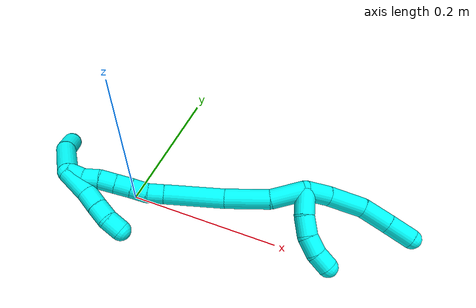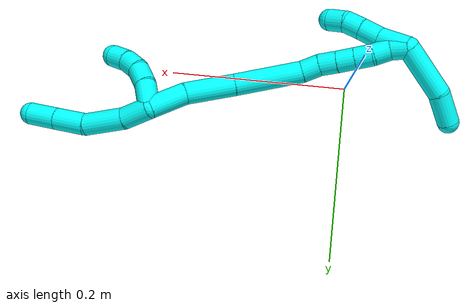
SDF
<sdf version="1.7">
 <world name="default">
  <model name="3">
   <static>0</static>
   <link name="3">
    <collision name="collision-cylinder-e_1_2_8">
     <pose>-0.008723 -0.004564 0.012999 0.337675 -0.564436 -0.098772</pose>
     <geometry><cylinder><radius>0.0125</radius><length>0.032611</length></cylinder></geometry>
     <surface>
      <friction><ode><mu>1.16</mu><mu2>1.16</mu2><slip1>0</slip1><slip2>0</slip2></ode></friction>
      <contact><ode><kp>1e+06</kp><kd>1</kd><max_vel>0</max_vel><min_depth>0.001</min_depth></ode></contact>
     </surface>
    </collision>
    <visual name="visual-cylinder-e_1_2_8">
     <pose>-0.008723 -0.004564 0.012999 0.337675 -0.564436 -0.098772</pose>
     <geometry><cylinder><radius>0.0125</radius><length>0.032611</length></cylinder></geometry>
     <material><ambient>0.003922 1 0.996078 1</ambient></material>
    </visual>
    <collision name="collision-cylinder-e_2_8_9">
     <pose>-0.025456 -0.015457 0.047429 0.287154 -0.344193 -0.050247</pose>
     <geometry><cylinder><radius>0.0125</radius><length>0.04748</length></cylinder></geometry>
     <surface>
      <friction><ode><mu>1.16</mu><mu2>1.16</mu2><slip1>0</slip1><slip2>0</slip2></ode></friction>
      <contact><ode><kp>1e+06</kp><kd>1</kd><max_vel>0</max_vel><min_depth>0.001</min_depth></ode></contact>
     </surface>
    </collision>
    <visual name="visual-cylinder-e_2_8_9">
     <pose>-0.025456 -0.015457 0.047429 0.287154 -0.344193 -0.050247</pose>
     <geometry><cylinder><radius>0.0125</radius><length>0.04748</length></cylinder></geometry>
     <material><ambient>0.003922 1 0.996078 1</ambient></material>
    </visual>
    <collision name="collision-cylinder-e_3_9_10">
     <pose>-0.034831 -0.023556 0.086964 0.09742 -0.074898 -0.003653</pose>
     <geometry><cylinder><radius>0.0125</radius><length>0.036479</length></cylinder></geometry>
     <surface>
      <friction><ode><mu>1.16</mu><mu2>1.16</mu2><slip1>0</slip1><slip2>0</slip2></ode></friction>
      <contact><ode><kp>1e+06</kp><kd>1</kd><max_vel>0</max_vel><min_depth>0.001</min_depth></ode></contact>
     </surface>
    </collision>
    <visual name="visual-cylinder-e_3_9_10">
     <pose>-0.034831 -0.023556 0.086964 0.09742 -0.074898 -0.003653</pose>
     <geometry><cylinder><radius>0.0125</radius><length>0.036479</length></cylinder></geometry>
     <material><ambient>0.003922 1 0.996078 1</ambient></material>
    </visual>
    <collision name="collision-cylinder-e_4_10_6">
     <pose>-0.037472 -0.026757 0.121671 0.086025 -0.076374 -0.003289</pose>
     <geometry><cylinder><radius>0.0125</radius><length>0.03343</length></cylinder></geometry>
     <surface>
      <friction><ode><mu>1.16</mu><mu2>1.16</mu2><slip1>0</slip1><slip2>0</slip2></ode></friction>
      <contact><ode><kp>1e+06</kp><kd>1</kd><max_vel>0</max_vel><min_depth>0.001</min_depth></ode></contact>
     </surface>
    </collision>
    <visual name="visual-cylinder-e_4_10_6">
     <pose>-0.037472 -0.026757 0.121671 0.086025 -0.076374 -0.003289</pose>
     <geometry><cylinder><radius>0.0125</radius><length>0.03343</length></cylinder></geometry>
     <material><ambient>0.003922 1 0.996078 1</ambient></material>
    </visual>
    <collision name="collision-cylinder-e_1_2_11">
     <pose>0.006397 0.011177 0.009071 -0.889035 0.418209 -0.201468</pose>
     <geometry><cylinder><radius>0.0125</radius><length>0.031504</length></cylinder></geometry>
     <surface>
      <friction><ode><mu>1.16</mu><mu2>1.16</mu2><slip1>0</slip1><slip2>0</slip2></ode></friction>
      <contact><ode><kp>1e+06</kp><kd>1</kd><max_vel>0</max_vel><min_depth>0.001</min_depth></ode></contact>
     </surface>
    </collision>
    <visual name="visual-cylinder-e_1_2_11">
     <pose>0.006397 0.011177 0.009071 -0.889035 0.418209 -0.201468</pose>
     <geometry><cylinder><radius>0.0125</radius><length>0.031504</length></cylinder></geometry>
     <material><ambient>0.003922 1 0.996078 1</ambient></material>
    </visual>
    <collision name="collision-cylinder-e_2_11_12">
     <pose>0.016141 0.030002 0.027332 -0.694104 0.272889 -0.099237</pose>
     <geometry><cylinder><radius>0.0125</radius><length>0.024832</length></cylinder></geometry>
     <surface>
      <friction><ode><mu>1.16</mu><mu2>1.16</mu2><slip1>0</slip1><slip2>0</slip2></ode></friction>
      <contact><ode><kp>1e+06</kp><kd>1</kd><max_vel>0</max_vel><min_depth>0.001</min_depth></ode></contact>
     </surface>
    </collision>
    <visual name="visual-cylinder-e_2_11_12">
     <pose>0.016141 0.030002 0.027332 -0.694104 0.272889 -0.099237</pose>
     <geometry><cylinder><radius>0.0125</radius><length>0.024832</length></cylinder></geometry>
     <material><ambient>0.003922 1 0.996078 1</ambient></material>
    </visual>
    <collision name="collision-cylinder-e_3_12_13">
     <pose>0.019996 0.042324 0.04664 -0.432697 0.045619 -0.010028</pose>
     <geometry><cylinder><radius>0.0125</radius><length>0.022313</length></cylinder></geometry>
     <surface>
      <friction><ode><mu>1.16</mu><mu2>1.16</mu2><slip1>0</slip1><slip2>0</slip2></ode></friction>
      <contact><ode><kp>1e+06</kp><kd>1</kd><max_vel>0</max_vel><min_depth>0.001</min_depth></ode></contact>
     </surface>
    </collision>
    <visual name="visual-cylinder-e_3_12_13">
     <pose>0.019996 0.042324 0.04664 -0.432697 0.045619 -0.010028</pose>
     <geometry><cylinder><radius>0.0125</radius><length>0.022313</length></cylinder></geometry>
     <material><ambient>0.003922 1 0.996078 1</ambient></material>
    </visual>
    <collision name="collision-cylinder-e_4_13_5">
     <pose>0.019569 0.049109 0.06718 -0.199962 -0.087742 0.008808</pose>
     <geometry><cylinder><radius>0.0125</radius><length>0.021351</length></cylinder></geometry>
     <surface>
      <friction><ode><mu>1.16</mu><mu2>1.16</mu2><slip1>0</slip1><slip2>0</slip2></ode></friction>
      <contact><ode><kp>1e+06</kp><kd>1</kd><max_vel>0</max_vel><min_depth>0.001</min_depth></ode></contact>
     </surface>
    </collision>
    <visual name="visual-cylinder-e_4_13_5">
     <pose>0.019569 0.049109 0.06718 -0.199962 -0.087742 0.008808</pose>
     <geometry><cylinder><radius>0.0125</radius><length>0.021351</length></cylinder></geometry>
     <material><ambient>0.003922 1 0.996078 1</ambient></material>
    </visual>
    <collision name="collision-cylinder-e_1_2_14">
     <pose>0.00497 0.016978 -0.01292 -2.22128 0.228879 -0.455752</pose>
     <geometry><cylinder><radius>0.0125</radius><length>0.043813</length></cylinder></geometry>
     <surface>
      <friction><ode><mu>1.16</mu><mu2>1.16</mu2><slip1>0</slip1><slip2>0</slip2></ode></friction>
      <contact><ode><kp>1e+06</kp><kd>1</kd><max_vel>0</max_vel><min_depth>0.001</min_depth></ode></contact>
     </surface>
    </collision>
    <visual name="visual-cylinder-e_1_2_14">
     <pose>0.00497 0.016978 -0.01292 -2.22128 0.228879 -0.455752</pose>
     <geometry><cylinder><radius>0.0125</radius><length>0.043813</length></cylinder></geometry>
     <material><ambient>0.003922 1 0.996078 1</ambient></material>
    </visual>
    <collision name="collision-cylinder-e_2_14_15">
     <pose>0.014201 0.051301 -0.047977 -2.47701 0.150357 -0.429786</pose>
     <geometry><cylinder><radius>0.0125</radius><length>0.056887</length></cylinder></geometry>
     <surface>
      <friction><ode><mu>1.16</mu><mu2>1.16</mu2><slip1>0</slip1><slip2>0</slip2></ode></friction>
      <contact><ode><kp>1e+06</kp><kd>1</kd><max_vel>0</max_vel><min_depth>0.001</min_depth></ode></contact>
     </surface>
    </collision>
    <visual name="visual-cylinder-e_2_14_15">
     <pose>0.014201 0.051301 -0.047977 -2.47701 0.150357 -0.429786</pose>
     <geometry><cylinder><radius>0.0125</radius><length>0.056887</length></cylinder></geometry>
     <material><ambient>0.003922 1 0.996078 1</ambient></material>
    </visual>
    <collision name="collision-cylinder-e_3_15_16">
     <pose>0.026759 0.089637 -0.10152 -2.55238 0.216225 -0.68702</pose>
     <geometry><cylinder><radius>0.0125</radius><length>0.077352</length></cylinder></geometry>
     <surface>
      <friction><ode><mu>1.16</mu><mu2>1.16</mu2><slip1>0</slip1><slip2>0</slip2></ode></friction>
      <contact><ode><kp>1e+06</kp><kd>1</kd><max_vel>0</max_vel><min_depth>0.001</min_depth></ode></contact>
     </surface>
    </collision>
    <visual name="visual-cylinder-e_3_15_16">
     <pose>0.026759 0.089637 -0.10152 -2.55238 0.216225 -0.68702</pose>
     <geometry><cylinder><radius>0.0125</radius><length>0.077352</length></cylinder></geometry>
     <material><ambient>0.003922 1 0.996078 1</ambient></material>
    </visual>
    <collision name="collision-cylinder-e_4_16_17">
     <pose>0.039749 0.115513 -0.141099 -2.60297 0.457901 -1.40233</pose>
     <geometry><cylinder><radius>0.0125</radius><length>0.021227</length></cylinder></geometry>
     <surface>
      <friction><ode><mu>1.16</mu><mu2>1.16</mu2><slip1>0</slip1><slip2>0</slip2></ode></friction>
      <contact><ode><kp>1e+06</kp><kd>1</kd><max_vel>0</max_vel><min_depth>0.001</min_depth></ode></contact>
     </surface>
    </collision>
    <visual name="visual-cylinder-e_4_16_17">
     <pose>0.039749 0.115513 -0.141099 -2.60297 0.457901 -1.40233</pose>
     <geometry><cylinder><radius>0.0125</radius><length>0.021227</length></cylinder></geometry>
     <material><ambient>0.003922 1 0.996078 1</ambient></material>
    </visual>
    <collision name="collision-cylinder-e_5_17_18">
     <pose>0.04784 0.123243 -0.158375 -2.83846 0.342294 -1.69413</pose>
     <geometry><cylinder><radius>0.0125</radius><length>0.020253</length></cylinder></geometry>
     <surface>
      <friction><ode><mu>1.16</mu><mu2>1.16</mu2><slip1>0</slip1><slip2>0</slip2></ode></friction>
      <contact><ode><kp>1e+06</kp><kd>1</kd><max_vel>0</max_vel><min_depth>0.001</min_depth></ode></contact>
     </surface>
    </collision>
    <visual name="visual-cylinder-e_5_17_18">
     <pose>0.04784 0.123243 -0.158375 -2.83846 0.342294 -1.69413</pose>
     <geometry><cylinder><radius>0.0125</radius><length>0.020253</length></cylinder></geometry>
     <material><ambient>0.003922 1 0.996078 1</ambient></material>
    </visual>
    <collision name="collision-cylinder-e_6_18_19">
     <pose>0.054757 0.129246 -0.176449 -2.80335 0.354428 -1.61848</pose>
     <geometry><cylinder><radius>0.0125</radius><length>0.020276</length></cylinder></geometry>
     <surface>
      <friction><ode><mu>1.16</mu><mu2>1.16</mu2><slip1>0</slip1><slip2>0</slip2></ode></friction>
      <contact><ode><kp>1e+06</kp><kd>1</kd><max_vel>0</max_vel><min_depth>0.001</min_depth></ode></contact>
     </surface>
    </collision>
    <visual name="visual-cylinder-e_6_18_19">
     <pose>0.054757 0.129246 -0.176449 -2.80335 0.354428 -1.61848</pose>
     <geometry><cylinder><radius>0.0125</radius><length>0.020276</length></cylinder></geometry>
     <material><ambient>0.003922 1 0.996078 1</ambient></material>
    </visual>
    <collision name="collision-cylinder-e_7_19_20">
     <pose>0.061794 0.135507 -0.194323 -2.80594 0.357064 -1.63384</pose>
     <geometry><cylinder><radius>0.0125</radius><length>0.020132</length></cylinder></geometry>
     <surface>
      <friction><ode><mu>1.16</mu><mu2>1.16</mu2><slip1>0</slip1><slip2>0</slip2></ode></friction>
      <contact><ode><kp>1e+06</kp><kd>1</kd><max_vel>0</max_vel><min_depth>0.001</min_depth></ode></contact>
     </surface>
    </collision>
    <visual name="visual-cylinder-e_7_19_20">
     <pose>0.061794 0.135507 -0.194323 -2.80594 0.357064 -1.63384</pose>
     <geometry><cylinder><radius>0.0125</radius><length>0.020132</length></cylinder></geometry>
     <material><ambient>0.003922 1 0.996078 1</ambient></material>
    </visual>
    <collision name="collision-cylinder-e_8_20_21">
     <pose>0.069028 0.1436 -0.211076 -2.57558 0.380147 -1.16895</pose>
     <geometry><cylinder><radius>0.0125</radius><length>0.020025</length></cylinder></geometry>
     <surface>
      <friction><ode><mu>1.16</mu><mu2>1.16</mu2><slip1>0</slip1><slip2>0</slip2></ode></friction>
      <contact><ode><kp>1e+06</kp><kd>1</kd><max_vel>0</max_vel><min_depth>0.001</min_depth></ode></contact>
     </surface>
    </collision>
    <visual name="visual-cylinder-e_8_20_21">
     <pose>0.069028 0.1436 -0.211076 -2.57558 0.380147 -1.16895</pose>
     <geometry><cylinder><radius>0.0125</radius><length>0.020025</length></cylinder></geometry>
     <material><ambient>0.003922 1 0.996078 1</ambient></material>
    </visual>
    <collision name="collision-cylinder-e_9_21_1">
     <pose>0.075395 0.15082 -0.228321 -2.90828 0.267963 -1.71028</pose>
     <geometry><cylinder><radius>0.0125</radius><length>0.020033</length></cylinder></geometry>
     <surface>
      <friction><ode><mu>1.16</mu><mu2>1.16</mu2><slip1>0</slip1><slip2>0</slip2></ode></friction>
      <contact><ode><kp>1e+06</kp><kd>1</kd><max_vel>0</max_vel><min_depth>0.001</min_depth></ode></contact>
     </surface>
    </collision>
    <visual name="visual-cylinder-e_9_21_1">
     <pose>0.075395 0.15082 -0.228321 -2.90828 0.267963 -1.71028</pose>
     <geometry><cylinder><radius>0.0125</radius><length>0.020033</length></cylinder></geometry>
     <material><ambient>0.003922 1 0.996078 1</ambient></material>
    </visual>
    <collision name="collision-cylinder-e_1_1_22">
     <pose>0.077914 0.154934 -0.22019 -0.106886 -0.007564 0.000405</pose>
     <geometry><cylinder><radius>0.0125</radius><length>0.03526</length></cylinder></geometry>
     <surface>
      <friction><ode><mu>1.16</mu><mu2>1.16</mu2><slip1>0</slip1><slip2>0</slip2></ode></friction>
      <contact><ode><kp>1e+06</kp><kd>1</kd><max_vel>0</max_vel><min_depth>0.001</min_depth></ode></contact>
     </surface>
    </collision>
    <visual name="visual-cylinder-e_1_1_22">
     <pose>0.077914 0.154934 -0.22019 -0.106886 -0.007564 0.000405</pose>
     <geometry><cylinder><radius>0.0125</radius><length>0.03526</length></cylinder></geometry>
     <material><ambient>0.003922 1 0.996078 1</ambient></material>
    </visual>
    <collision name="collision-cylinder-e_2_22_23">
     <pose>0.079649 0.158175 -0.191307 -0.119277 0.161925 -0.00969</pose>
     <geometry><cylinder><radius>0.0125</radius><length>0.023172</length></cylinder></geometry>
     <surface>
      <friction><ode><mu>1.16</mu><mu2>1.16</mu2><slip1>0</slip1><slip2>0</slip2></ode></friction>
      <contact><ode><kp>1e+06</kp><kd>1</kd><max_vel>0</max_vel><min_depth>0.001</min_depth></ode></contact>
     </surface>
    </collision>
    <visual name="visual-cylinder-e_2_22_23">
     <pose>0.079649 0.158175 -0.191307 -0.119277 0.161925 -0.00969</pose>
     <geometry><cylinder><radius>0.0125</radius><length>0.023172</length></cylinder></geometry>
     <material><ambient>0.003922 1 0.996078 1</ambient></material>
    </visual>
    <collision name="collision-cylinder-e_3_23_24">
     <pose>0.082753 0.160675 -0.169711 -0.11074 0.119401 -0.006626</pose>
     <geometry><cylinder><radius>0.0125</radius><length>0.020759</length></cylinder></geometry>
     <surface>
      <friction><ode><mu>1.16</mu><mu2>1.16</mu2><slip1>0</slip1><slip2>0</slip2></ode></friction>
      <contact><ode><kp>1e+06</kp><kd>1</kd><max_vel>0</max_vel><min_depth>0.001</min_depth></ode></contact>
     </surface>
    </collision>
    <visual name="visual-cylinder-e_3_23_24">
     <pose>0.082753 0.160675 -0.169711 -0.11074 0.119401 -0.006626</pose>
     <geometry><cylinder><radius>0.0125</radius><length>0.020759</length></cylinder></geometry>
     <material><ambient>0.003922 1 0.996078 1</ambient></material>
    </visual>
    <collision name="collision-cylinder-e_4_24_4">
     <pose>0.081883 0.162703 -0.149319 -0.087376 -0.203893 0.008944</pose>
     <geometry><cylinder><radius>0.0125</radius><length>0.020809</length></cylinder></geometry>
     <surface>
      <friction><ode><mu>1.16</mu><mu2>1.16</mu2><slip1>0</slip1><slip2>0</slip2></ode></friction>
      <contact><ode><kp>1e+06</kp><kd>1</kd><max_vel>0</max_vel><min_depth>0.001</min_depth></ode></contact>
     </surface>
    </collision>
    <visual name="visual-cylinder-e_4_24_4">
     <pose>0.081883 0.162703 -0.149319 -0.087376 -0.203893 0.008944</pose>
     <geometry><cylinder><radius>0.0125</radius><length>0.020809</length></cylinder></geometry>
     <material><ambient>0.003922 1 0.996078 1</ambient></material>
    </visual>
    <collision name="collision-cylinder-e_1_1_25">
     <pose>0.05498 0.154722 -0.258821 -3.06265 -0.828296 2.9624</pose>
     <geometry><cylinder><radius>0.0125</radius><length>0.062616</length></cylinder></geometry>
     <surface>
      <friction><ode><mu>1.16</mu><mu2>1.16</mu2><slip1>0</slip1><slip2>0</slip2></ode></friction>
      <contact><ode><kp>1e+06</kp><kd>1</kd><max_vel>0</max_vel><min_depth>0.001</min_depth></ode></contact>
     </surface>
    </collision>
    <visual name="visual-cylinder-e_1_1_25">
     <pose>0.05498 0.154722 -0.258821 -3.06265 -0.828296 2.9624</pose>
     <geometry><cylinder><radius>0.0125</radius><length>0.062616</length></cylinder></geometry>
     <material><ambient>0.003922 1 0.996078 1</ambient></material>
    </visual>
    <collision name="collision-cylinder-e_2_25_3">
     <pose>0.015118 0.157393 -0.288066 -3.01917 -1.11644 2.94594</pose>
     <geometry><cylinder><radius>0.0125</radius><length>0.037384</length></cylinder></geometry>
     <surface>
      <friction><ode><mu>1.16</mu><mu2>1.16</mu2><slip1>0</slip1><slip2>0</slip2></ode></friction>
      <contact><ode><kp>1e+06</kp><kd>1</kd><max_vel>0</max_vel><min_depth>0.001</min_depth></ode></contact>
     </surface>
    </collision>
    <visual name="visual-cylinder-e_2_25_3">
     <pose>0.015118 0.157393 -0.288066 -3.01917 -1.11644 2.94594</pose>
     <geometry><cylinder><radius>0.0125</radius><length>0.037384</length></cylinder></geometry>
     <material><ambient>0.003922 1 0.996078 1</ambient></material>
    </visual>
    <collision name="collision-sphere-3">
     <pose>-0.001678 0.158395 -0.296208 0 -0 0</pose>
     <geometry><sphere><radius>0.0125</radius></sphere></geometry>
     <surface>
      <friction><ode><mu>1.16</mu><mu2>1.16</mu2><slip1>0</slip1><slip2>0</slip2></ode></friction>
      <contact><ode><kp>1e+06</kp><kd>1</kd><max_vel>0</max_vel><min_depth>0.001</min_depth></ode></contact>
     </surface>
    </collision>
    <visual name="visual-sphere-3">
     <pose>-0.001678 0.158395 -0.296208 0 -0 0</pose>
     <geometry><sphere><radius>0.0125</radius></sphere></geometry>
     <material><ambient>0.003922 1 0.996078 1</ambient></material>
    </visual>
    <collision name="collision-sphere-25">
     <pose>0.031913 0.156391 -0.279923 0 -0 0</pose>
     <geometry><sphere><radius>0.0125</radius></sphere></geometry>
     <surface>
      <friction><ode><mu>1.16</mu><mu2>1.16</mu2><slip1>0</slip1><slip2>0</slip2></ode></friction>
      <contact><ode><kp>1e+06</kp><kd>1</kd><max_vel>0</max_vel><min_depth>0.001</min_depth></ode></contact>
     </surface>
    </collision>
    <visual name="visual-sphere-25">
     <pose>0.031913 0.156391 -0.279923 0 -0 0</pose>
     <geometry><sphere><radius>0.0125</radius></sphere></geometry>
     <material><ambient>0.003922 1 0.996078 1</ambient></material>
    </visual>
    <collision name="collision-sphere-4">
     <pose>0.079776 0.163592 -0.139169 0 -0 0</pose>
     <geometry><sphere><radius>0.0125</radius></sphere></geometry>
     <surface>
      <friction><ode><mu>1.16</mu><mu2>1.16</mu2><slip1>0</slip1><slip2>0</slip2></ode></friction>
      <contact><ode><kp>1e+06</kp><kd>1</kd><max_vel>0</max_vel><min_depth>0.001</min_depth></ode></contact>
     </surface>
    </collision>
    <visual name="visual-sphere-4">
     <pose>0.079776 0.163592 -0.139169 0 -0 0</pose>
     <geometry><sphere><radius>0.0125</radius></sphere></geometry>
     <material><ambient>0.003922 1 0.996078 1</ambient></material>
    </visual>
    <collision name="collision-sphere-24">
     <pose>0.083989 0.161813 -0.159469 0 -0 0</pose>
     <geometry><sphere><radius>0.0125</radius></sphere></geometry>
     <surface>
      <friction><ode><mu>1.16</mu><mu2>1.16</mu2><slip1>0</slip1><slip2>0</slip2></ode></friction>
      <contact><ode><kp>1e+06</kp><kd>1</kd><max_vel>0</max_vel><min_depth>0.001</min_depth></ode></contact>
     </surface>
    </collision>
    <visual name="visual-sphere-24">
     <pose>0.083989 0.161813 -0.159469 0 -0 0</pose>
     <geometry><sphere><radius>0.0125</radius></sphere></geometry>
     <material><ambient>0.003922 1 0.996078 1</ambient></material>
    </visual>
    <collision name="collision-sphere-23">
     <pose>0.081517 0.159536 -0.179954 0 -0 0</pose>
     <geometry><sphere><radius>0.0125</radius></sphere></geometry>
     <surface>
      <friction><ode><mu>1.16</mu><mu2>1.16</mu2><slip1>0</slip1><slip2>0</slip2></ode></friction>
      <contact><ode><kp>1e+06</kp><kd>1</kd><max_vel>0</max_vel><min_depth>0.001</min_depth></ode></contact>
     </surface>
    </collision>
    <visual name="visual-sphere-23">
     <pose>0.081517 0.159536 -0.179954 0 -0 0</pose>
     <geometry><sphere><radius>0.0125</radius></sphere></geometry>
     <material><ambient>0.003922 1 0.996078 1</ambient></material>
    </visual>
    <collision name="collision-sphere-22">
     <pose>0.077781 0.156814 -0.202661 0 -0 0</pose>
     <geometry><sphere><radius>0.0125</radius></sphere></geometry>
     <surface>
      <friction><ode><mu>1.16</mu><mu2>1.16</mu2><slip1>0</slip1><slip2>0</slip2></ode></friction>
      <contact><ode><kp>1e+06</kp><kd>1</kd><max_vel>0</max_vel><min_depth>0.001</min_depth></ode></contact>
     </surface>
    </collision>
    <visual name="visual-sphere-22">
     <pose>0.077781 0.156814 -0.202661 0 -0 0</pose>
     <geometry><sphere><radius>0.0125</radius></sphere></geometry>
     <material><ambient>0.003922 1 0.996078 1</ambient></material>
    </visual>
    <collision name="collision-sphere-1">
     <pose>0.078047 0.153053 -0.237718 0 -0 0</pose>
     <geometry><sphere><radius>0.0125</radius></sphere></geometry>
     <surface>
      <friction><ode><mu>1.16</mu><mu2>1.16</mu2><slip1>0</slip1><slip2>0</slip2></ode></friction>
      <contact><ode><kp>1e+06</kp><kd>1</kd><max_vel>0</max_vel><min_depth>0.001</min_depth></ode></contact>
     </surface>
    </collision>
    <visual name="visual-sphere-1">
     <pose>0.078047 0.153053 -0.237718 0 -0 0</pose>
     <geometry><sphere><radius>0.0125</radius></sphere></geometry>
     <material><ambient>0.003922 1 0.996078 1</ambient></material>
    </visual>
    <collision name="collision-sphere-21">
     <pose>0.072743 0.148586 -0.218923 0 -0 0</pose>
     <geometry><sphere><radius>0.0125</radius></sphere></geometry>
     <surface>
      <friction><ode><mu>1.16</mu><mu2>1.16</mu2><slip1>0</slip1><slip2>0</slip2></ode></friction>
      <contact><ode><kp>1e+06</kp><kd>1</kd><max_vel>0</max_vel><min_depth>0.001</min_depth></ode></contact>
     </surface>
    </collision>
    <visual name="visual-sphere-21">
     <pose>0.072743 0.148586 -0.218923 0 -0 0</pose>
     <geometry><sphere><radius>0.0125</radius></sphere></geometry>
     <material><ambient>0.003922 1 0.996078 1</ambient></material>
    </visual>
    <collision name="collision-sphere-11">
     <pose>0.012794 0.022353 0.018141 0 -0 0</pose>
     <geometry><sphere><radius>0.0125</radius></sphere></geometry>
     <surface>
      <friction><ode><mu>1.16</mu><mu2>1.16</mu2><slip1>0</slip1><slip2>0</slip2></ode></friction>
      <contact><ode><kp>1e+06</kp><kd>1</kd><max_vel>0</max_vel><min_depth>0.001</min_depth></ode></contact>
     </surface>
    </collision>
    <visual name="visual-sphere-11">
     <pose>0.012794 0.022353 0.018141 0 -0 0</pose>
     <geometry><sphere><radius>0.0125</radius></sphere></geometry>
     <material><ambient>0.003922 1 0.996078 1</ambient></material>
    </visual>
    <collision name="collision-sphere-6">
     <pose>-0.038747 -0.028189 0.138275 0 -0 0</pose>
     <geometry><sphere><radius>0.0125</radius></sphere></geometry>
     <surface>
      <friction><ode><mu>1.16</mu><mu2>1.16</mu2><slip1>0</slip1><slip2>0</slip2></ode></friction>
      <contact><ode><kp>1e+06</kp><kd>1</kd><max_vel>0</max_vel><min_depth>0.001</min_depth></ode></contact>
     </surface>
    </collision>
    <visual name="visual-sphere-6">
     <pose>-0.038747 -0.028189 0.138275 0 -0 0</pose>
     <geometry><sphere><radius>0.0125</radius></sphere></geometry>
     <material><ambient>0.003922 1 0.996078 1</ambient></material>
    </visual>
    <collision name="collision-sphere-10">
     <pose>-0.036196 -0.025325 0.105066 0 -0 0</pose>
     <geometry><sphere><radius>0.0125</radius></sphere></geometry>
     <surface>
      <friction><ode><mu>1.16</mu><mu2>1.16</mu2><slip1>0</slip1><slip2>0</slip2></ode></friction>
      <contact><ode><kp>1e+06</kp><kd>1</kd><max_vel>0</max_vel><min_depth>0.001</min_depth></ode></contact>
     </surface>
    </collision>
    <visual name="visual-sphere-10">
     <pose>-0.036196 -0.025325 0.105066 0 -0 0</pose>
     <geometry><sphere><radius>0.0125</radius></sphere></geometry>
     <material><ambient>0.003922 1 0.996078 1</ambient></material>
    </visual>
    <collision name="collision-sphere-9">
     <pose>-0.033467 -0.021787 0.068862 0 -0 0</pose>
     <geometry><sphere><radius>0.0125</radius></sphere></geometry>
     <surface>
      <friction><ode><mu>1.16</mu><mu2>1.16</mu2><slip1>0</slip1><slip2>0</slip2></ode></friction>
      <contact><ode><kp>1e+06</kp><kd>1</kd><max_vel>0</max_vel><min_depth>0.001</min_depth></ode></contact>
     </surface>
    </collision>
    <visual name="visual-sphere-9">
     <pose>-0.033467 -0.021787 0.068862 0 -0 0</pose>
     <geometry><sphere><radius>0.0125</radius></sphere></geometry>
     <material><ambient>0.003922 1 0.996078 1</ambient></material>
    </visual>
    <collision name="collision-sphere-2">
     <geometry><sphere><radius>0.0125</radius></sphere></geometry>
     <surface>
      <friction><ode><mu>1.16</mu><mu2>1.16</mu2><slip1>0</slip1><slip2>0</slip2></ode></friction>
      <contact><ode><kp>1e+06</kp><kd>1</kd><max_vel>0</max_vel><min_depth>0.001</min_depth></ode></contact>
     </surface>
    </collision>
    <visual name="visual-sphere-2">
     <geometry><sphere><radius>0.0125</radius></sphere></geometry>
     <material><ambient>0.003922 1 0.996078 1</ambient></material>
    </visual>
    <collision name="collision-sphere-19">
     <pose>0.058276 0.132401 -0.185418 0 -0 0</pose>
     <geometry><sphere><radius>0.0125</radius></sphere></geometry>
     <surface>
      <friction><ode><mu>1.16</mu><mu2>1.16</mu2><slip1>0</slip1><slip2>0</slip2></ode></friction>
      <contact><ode><kp>1e+06</kp><kd>1</kd><max_vel>0</max_vel><min_depth>0.001</min_depth></ode></contact>
     </surface>
    </collision>
    <visual name="visual-sphere-19">
     <pose>0.058276 0.132401 -0.185418 0 -0 0</pose>
     <geometry><sphere><radius>0.0125</radius></sphere></geometry>
     <material><ambient>0.003922 1 0.996078 1</ambient></material>
    </visual>
    <collision name="collision-sphere-8">
     <pose>-0.017445 -0.009128 0.025997 0 -0 0</pose>
     <geometry><sphere><radius>0.0125</radius></sphere></geometry>
     <surface>
      <friction><ode><mu>1.16</mu><mu2>1.16</mu2><slip1>0</slip1><slip2>0</slip2></ode></friction>
      <contact><ode><kp>1e+06</kp><kd>1</kd><max_vel>0</max_vel><min_depth>0.001</min_depth></ode></contact>
     </surface>
    </collision>
    <visual name="visual-sphere-8">
     <pose>-0.017445 -0.009128 0.025997 0 -0 0</pose>
     <geometry><sphere><radius>0.0125</radius></sphere></geometry>
     <material><ambient>0.003922 1 0.996078 1</ambient></material>
    </visual>
    <collision name="collision-sphere-12">
     <pose>0.019487 0.03765 0.036522 0 -0 0</pose>
     <geometry><sphere><radius>0.0125</radius></sphere></geometry>
     <surface>
      <friction><ode><mu>1.16</mu><mu2>1.16</mu2><slip1>0</slip1><slip2>0</slip2></ode></friction>
      <contact><ode><kp>1e+06</kp><kd>1</kd><max_vel>0</max_vel><min_depth>0.001</min_depth></ode></contact>
     </surface>
    </collision>
    <visual name="visual-sphere-12">
     <pose>0.019487 0.03765 0.036522 0 -0 0</pose>
     <geometry><sphere><radius>0.0125</radius></sphere></geometry>
     <material><ambient>0.003922 1 0.996078 1</ambient></material>
    </visual>
    <collision name="collision-sphere-13">
     <pose>0.020505 0.046997 0.056757 0 -0 0</pose>
     <geometry><sphere><radius>0.0125</radius></sphere></geometry>
     <surface>
      <friction><ode><mu>1.16</mu><mu2>1.16</mu2><slip1>0</slip1><slip2>0</slip2></ode></friction>
      <contact><ode><kp>1e+06</kp><kd>1</kd><max_vel>0</max_vel><min_depth>0.001</min_depth></ode></contact>
     </surface>
    </collision>
    <visual name="visual-sphere-13">
     <pose>0.020505 0.046997 0.056757 0 -0 0</pose>
     <geometry><sphere><radius>0.0125</radius></sphere></geometry>
     <material><ambient>0.003922 1 0.996078 1</ambient></material>
    </visual>
    <collision name="collision-sphere-5">
     <pose>0.018634 0.051222 0.077603 0 -0 0</pose>
     <geometry><sphere><radius>0.0125</radius></sphere></geometry>
     <surface>
      <friction><ode><mu>1.16</mu><mu2>1.16</mu2><slip1>0</slip1><slip2>0</slip2></ode></friction>
      <contact><ode><kp>1e+06</kp><kd>1</kd><max_vel>0</max_vel><min_depth>0.001</min_depth></ode></contact>
     </surface>
    </collision>
    <visual name="visual-sphere-5">
     <pose>0.018634 0.051222 0.077603 0 -0 0</pose>
     <geometry><sphere><radius>0.0125</radius></sphere></geometry>
     <material><ambient>0.003922 1 0.996078 1</ambient></material>
    </visual>
    <collision name="collision-sphere-14">
     <pose>0.009941 0.033957 -0.02584 0 -0 0</pose>
     <geometry><sphere><radius>0.0125</radius></sphere></geometry>
     <surface>
      <friction><ode><mu>1.16</mu><mu2>1.16</mu2><slip1>0</slip1><slip2>0</slip2></ode></friction>
      <contact><ode><kp>1e+06</kp><kd>1</kd><max_vel>0</max_vel><min_depth>0.001</min_depth></ode></contact>
     </surface>
    </collision>
    <visual name="visual-sphere-14">
     <pose>0.009941 0.033957 -0.02584 0 -0 0</pose>
     <geometry><sphere><radius>0.0125</radius></sphere></geometry>
     <material><ambient>0.003922 1 0.996078 1</ambient></material>
    </visual>
    <collision name="collision-sphere-15">
     <pose>0.018462 0.068645 -0.070114 0 -0 0</pose>
     <geometry><sphere><radius>0.0125</radius></sphere></geometry>
     <surface>
      <friction><ode><mu>1.16</mu><mu2>1.16</mu2><slip1>0</slip1><slip2>0</slip2></ode></friction>
      <contact><ode><kp>1e+06</kp><kd>1</kd><max_vel>0</max_vel><min_depth>0.001</min_depth></ode></contact>
     </surface>
    </collision>
    <visual name="visual-sphere-15">
     <pose>0.018462 0.068645 -0.070114 0 -0 0</pose>
     <geometry><sphere><radius>0.0125</radius></sphere></geometry>
     <material><ambient>0.003922 1 0.996078 1</ambient></material>
    </visual>
    <collision name="collision-sphere-16">
     <pose>0.035057 0.110629 -0.132926 0 -0 0</pose>
     <geometry><sphere><radius>0.0125</radius></sphere></geometry>
     <surface>
      <friction><ode><mu>1.16</mu><mu2>1.16</mu2><slip1>0</slip1><slip2>0</slip2></ode></friction>
      <contact><ode><kp>1e+06</kp><kd>1</kd><max_vel>0</max_vel><min_depth>0.001</min_depth></ode></contact>
     </surface>
    </collision>
    <visual name="visual-sphere-16">
     <pose>0.035057 0.110629 -0.132926 0 -0 0</pose>
     <geometry><sphere><radius>0.0125</radius></sphere></geometry>
     <material><ambient>0.003922 1 0.996078 1</ambient></material>
    </visual>
    <collision name="collision-sphere-17">
     <pose>0.044441 0.120396 -0.149271 0 -0 0</pose>
     <geometry><sphere><radius>0.0125</radius></sphere></geometry>
     <surface>
      <friction><ode><mu>1.16</mu><mu2>1.16</mu2><slip1>0</slip1><slip2>0</slip2></ode></friction>
      <contact><ode><kp>1e+06</kp><kd>1</kd><max_vel>0</max_vel><min_depth>0.001</min_depth></ode></contact>
     </surface>
    </collision>
    <visual name="visual-sphere-17">
     <pose>0.044441 0.120396 -0.149271 0 -0 0</pose>
     <geometry><sphere><radius>0.0125</radius></sphere></geometry>
     <material><ambient>0.003922 1 0.996078 1</ambient></material>
    </visual>
    <collision name="collision-sphere-18">
     <pose>0.051239 0.126091 -0.167479 0 -0 0</pose>
     <geometry><sphere><radius>0.0125</radius></sphere></geometry>
     <surface>
      <friction><ode><mu>1.16</mu><mu2>1.16</mu2><slip1>0</slip1><slip2>0</slip2></ode></friction>
      <contact><ode><kp>1e+06</kp><kd>1</kd><max_vel>0</max_vel><min_depth>0.001</min_depth></ode></contact>
     </surface>
    </collision>
    <visual name="visual-sphere-18">
     <pose>0.051239 0.126091 -0.167479 0 -0 0</pose>
     <geometry><sphere><radius>0.0125</radius></sphere></geometry>
     <material><ambient>0.003922 1 0.996078 1</ambient></material>
    </visual>
    <collision name="collision-sphere-20">
     <pose>0.065313 0.138614 -0.203228 0 -0 0</pose>
     <geometry><sphere><radius>0.0125</radius></sphere></geometry>
     <surface>
      <friction><ode><mu>1.16</mu><mu2>1.16</mu2><slip1>0</slip1><slip2>0</slip2></ode></friction>
      <contact><ode><kp>1e+06</kp><kd>1</kd><max_vel>0</max_vel><min_depth>0.001</min_depth></ode></contact>
     </surface>
    </collision>
    <visual name="visual-sphere-20">
     <pose>0.065313 0.138614 -0.203228 0 -0 0</pose>
     <geometry><sphere><radius>0.0125</radius></sphere></geometry>
     <material><ambient>0.003922 1 0.996078 1</ambient></material>
    </visual>
    <inertial>
     <pose>0.02617 0.078219 -0.088119 0 -0 0</pose>
     <mass>0.75</mass>
     <inertia><ixx>3.5e-05</ixx><ixy>0</ixy><ixz>0</ixz><iyy>3e-06</iyy><iyz>0</iyz><izz>-3.5e-05</izz></inertia>
    </inertial>
   </link>
   <pose>0.21778 0.052076 0.05936 -1.96684 -0.687017 -1.56657</pose>
  </model>
 </world>
</sdf>
